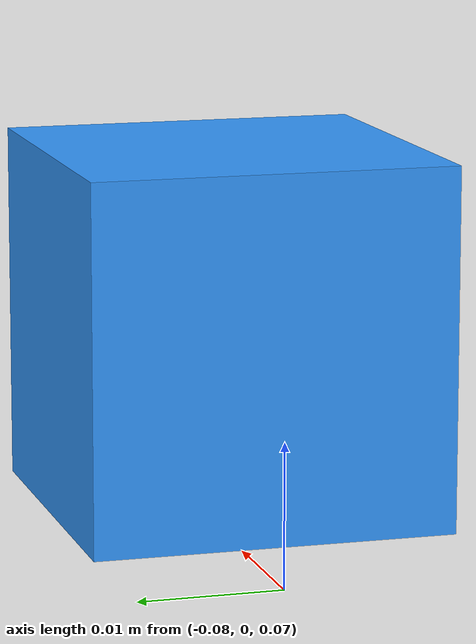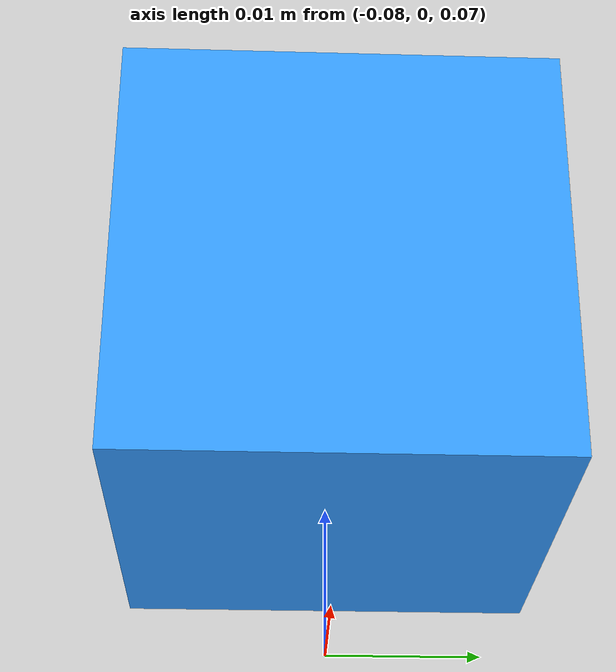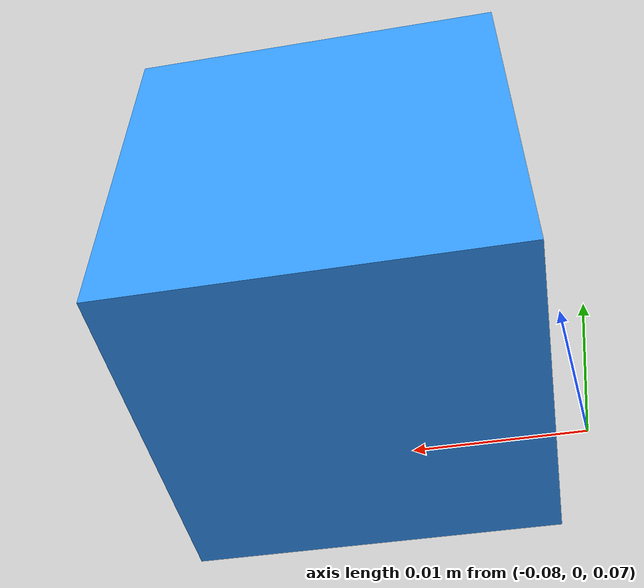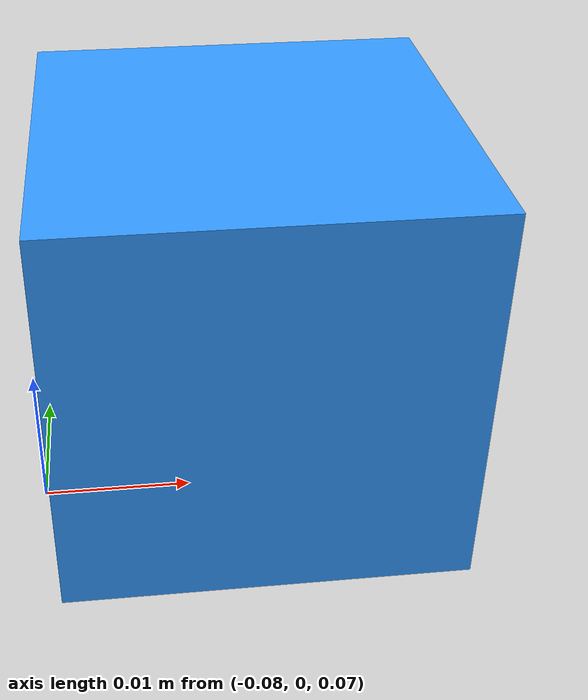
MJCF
<mujoco>
  <!-- ================================================================
       物块参数文件（P-stage 和 V-stage 共用）
       ================================================================ -->
  <default>
    <default class="cube">
      <!-- C14: friction 2.0→1.5 (moderate), mass 20g→10g (easier hold) -->
      <!-- C20穿模修复: 添加solref/solimp使方块接触更硬 -->
      <geom friction="1.5 0.05" conaffinity="7" condim="3" solref="0.005 1.0" solimp="0.97 0.999 0.0001"/>
    </default>
  </default>

  <worldbody>
    <!-- 【物块 body】
         pos：默认初始位置（被 keyframe 或 Python config 中 cube_pos 覆盖，此值不生效）
         quat：初始姿态，1 0 0 0 = 无旋转 -->
    <body name="cube" pos="-0.066 0.0 0.085" quat="1 0 0 0" childclass="cube">
      <!-- freejoint：使物块有 6-DOF 自由运动（位置+姿态，共 7 qpos）-->
      <freejoint name="cube_freejoint"/>
      <geom name="cube" type="box" size=".0125 .0125 .0125" mass=".020" group="1" rgba="0.2 0.6 1.0 1"/>
      <site name="cube_center" pos="0 0 0" group="4"/>
    </body>
  </worldbody>
</mujoco>
